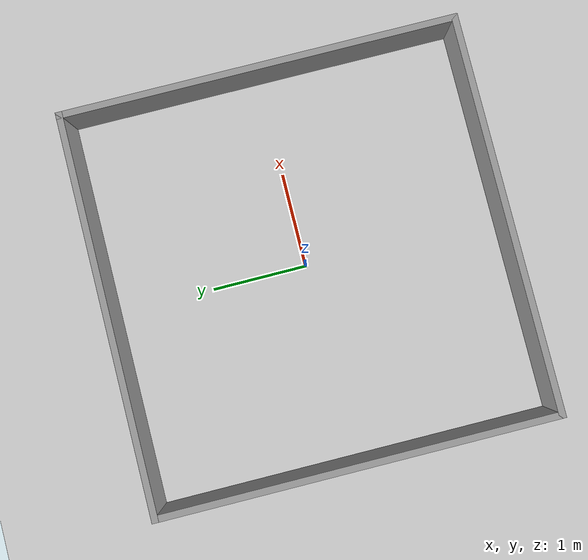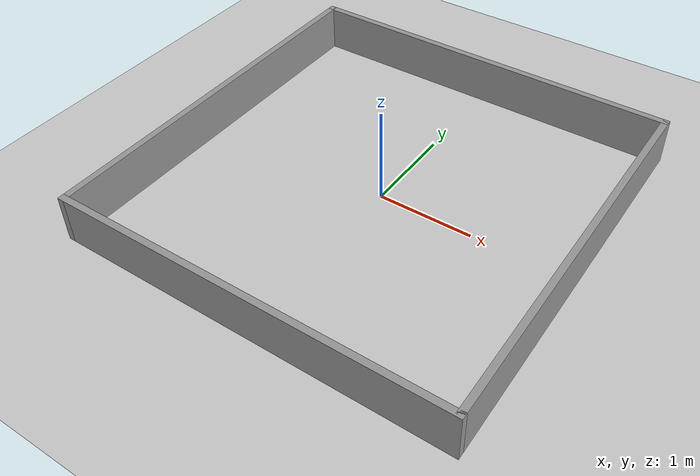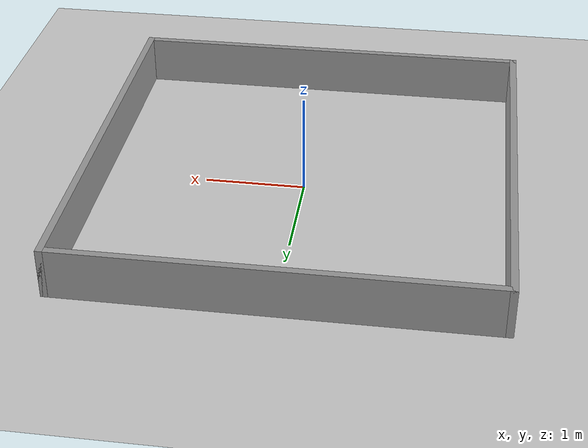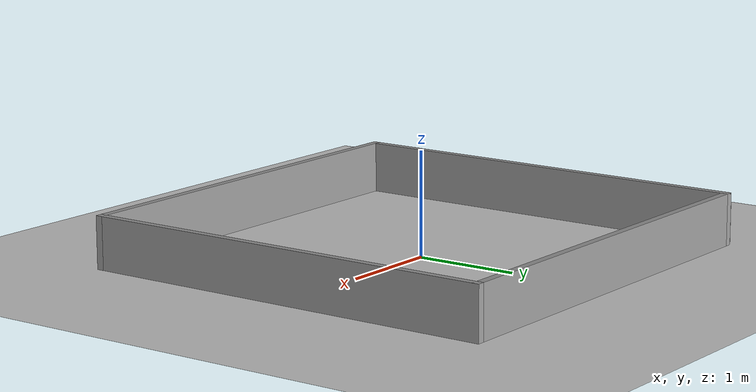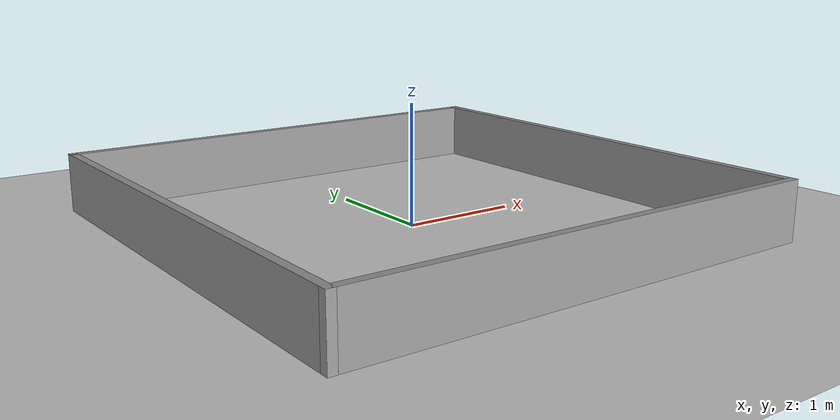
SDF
<sdf version="1.7">
 <world name="default">
  <light name="sun" type="directional">
   <pose>0 0 10 0 -0 0</pose>
   <diffuse>0.8 0.8 0.8 1</diffuse>
   <specular>0.2 0.2 0.2 1</specular>
   <attenuation>
    <range>1000</range>
    <constant>0.9</constant>
    <linear>0.01</linear>
    <quadratic>0.001</quadratic>
   </attenuation>
   <direction>-0.5 0.1 -0.9</direction>
   <spot><inner_angle>0</inner_angle><outer_angle>0</outer_angle><falloff>0</falloff></spot>
  </light>
  <model name="ground_plane">
   <static>1</static>
   <link name="link">
    <collision name="collision">
     <geometry><plane><normal>0 0 1</normal><size>100 100</size></plane></geometry>
     <surface>
      <contact><collide_bitmask>65535</collide_bitmask></contact>
      <friction><ode><mu>100</mu><mu2>50</mu2></ode></friction>
     </surface>
    </collision>
    <visual name="visual">
     <cast_shadows>0</cast_shadows>
     <geometry><plane><normal>0 0 1</normal><size>4.2 4.2</size></plane></geometry>
     <material><script><uri>file:///home/ros1/桌面/2/png1.material</uri><name>png1</name></script></material>
    </visual>
   </link>
  </model>
  <gravity>0 0 -9.8</gravity>
  <magnetic_field>6e-06 2.3e-05 -4.2e-05</magnetic_field>
  <atmosphere type="adiabatic"/>
  <physics type="ode">
   <max_step_size>0.001</max_step_size>
   <real_time_factor>1</real_time_factor>
   <real_time_update_rate>1000</real_time_update_rate>
  </physics>
  <scene><ambient>0.4 0.4 0.4 1</ambient><background>0.7 0.7 0.7 1</background><shadows>1</shadows></scene>
  <spherical_coordinates>
   <surface_model>EARTH_WGS84</surface_model>
   <latitude_deg>0</latitude_deg>
   <longitude_deg>0</longitude_deg>
   <elevation>0</elevation>
   <heading_deg>0</heading_deg>
  </spherical_coordinates>
  <model name="wall_1">
   <pose>2.56261 0.68932 0 0 -0 0</pose>
   <link name="Wall_0">
    <collision name="Wall_0_Collision">
     <geometry><box><size>4.17 0.07 0.5</size></box></geometry>
     <pose>0 0 0.25 0 -0 0</pose>
    </collision>
    <visual name="Wall_0_Visual">
     <pose>0 0 0.25 0 -0 0</pose>
     <geometry><box><size>4.17 0.07 0.5</size></box></geometry>
     <material>
      <script><uri>file://media/materials/scripts/gazebo.material</uri><name>Gazebo/Grey</name></script>
      <ambient>1 1 1 1</ambient>
     </material>
     <meta><layer>0</layer></meta>
    </visual>
    <pose>-2.56497 1.342 0 0 -0 0</pose>
   </link>
   <link name="Wall_1">
    <collision name="Wall_1_Collision">
     <geometry><box><size>4.17 0.07 0.5</size></box></geometry>
     <pose>0 0 0.25 0 -0 0</pose>
    </collision>
    <visual name="Wall_1_Visual">
     <pose>0 0 0.25 0 -0 0</pose>
     <geometry><box><size>4.17 0.07 0.5</size></box></geometry>
     <material>
      <script><uri>file://media/materials/scripts/gazebo.material</uri><name>Gazebo/Grey</name></script>
      <ambient>1 1 1 1</ambient>
     </material>
     <meta><layer>0</layer></meta>
    </visual>
    <pose>-0.514971 -0.708 0 0 -0 -1.5708</pose>
   </link>
   <link name="Wall_2">
    <collision name="Wall_2_Collision">
     <geometry><box><size>4.17012 0.07 0.5</size></box></geometry>
     <pose>0 0 0.25 0 -0 0</pose>
    </collision>
    <visual name="Wall_2_Visual">
     <pose>0 0 0.25 0 -0 0</pose>
     <geometry><box><size>4.17012 0.07 0.5</size></box></geometry>
     <material>
      <script><uri>file://media/materials/scripts/gazebo.material</uri><name>Gazebo/Grey</name></script>
      <ambient>1 1 1 1</ambient>
     </material>
     <meta><layer>0</layer></meta>
    </visual>
    <pose>-2.56497 -2.758 0 0 -0 3.14159</pose>
   </link>
   <link name="Wall_3">
    <collision name="Wall_3_Collision">
     <geometry><box><size>4.17 0.07 0.5</size></box></geometry>
     <pose>0 0 0.25 0 -0 0</pose>
    </collision>
    <visual name="Wall_3_Visual">
     <pose>0 0 0.25 0 -0 0</pose>
     <geometry><box><size>4.17 0.07 0.5</size></box></geometry>
     <material>
      <script><uri>file://media/materials/scripts/gazebo.material</uri><name>Gazebo/Grey</name></script>
      <ambient>1 1 1 1</ambient>
     </material>
     <meta><layer>0</layer></meta>
    </visual>
    <pose>-4.61497 -0.708 0 0 -0 1.5708</pose>
   </link>
   <static>1</static>
  </model>
 </world>
</sdf>
